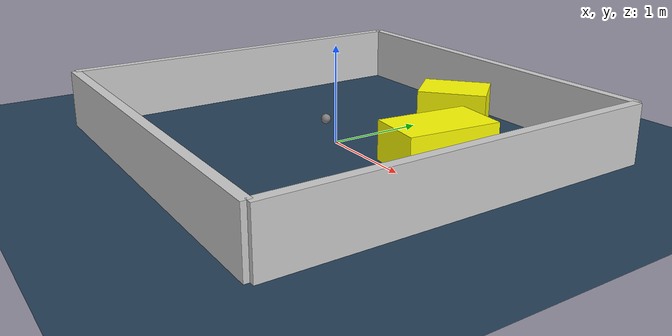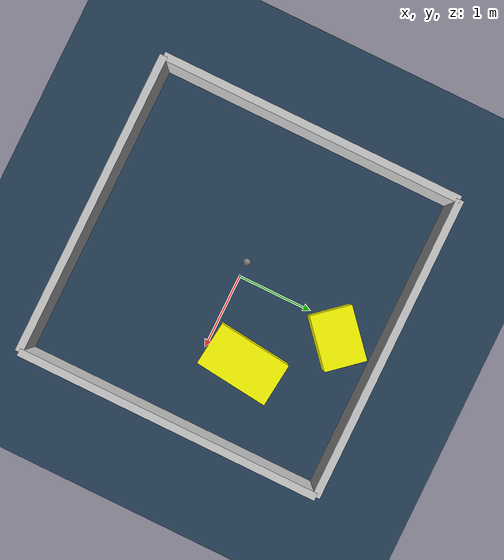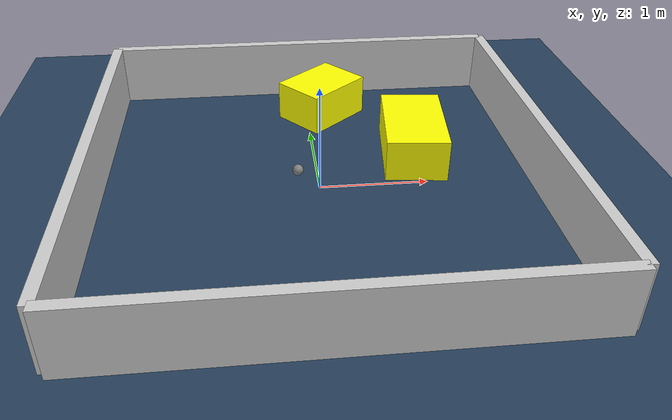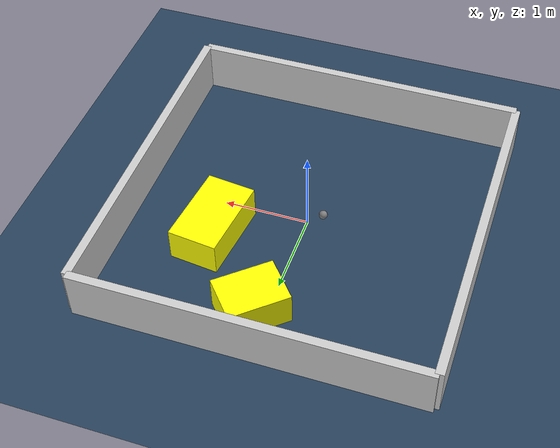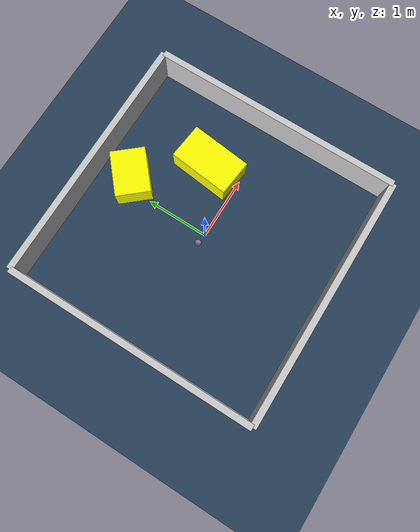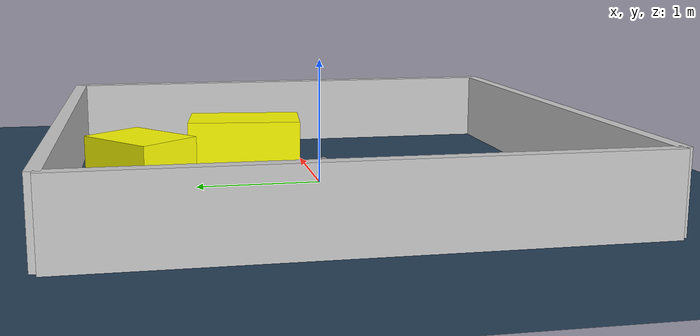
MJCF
<?xml version="1.0" ?>
<mujoco model="generated_environment">
  <option timestep="0.01" integrator="RK4" cone="elliptic"/>
  <default>
    <geom density="1"/>
  </default>
  <asset>
    <texture builtin="gradient" height="3072" rgb1="0.3 0.5 0.7" rgb2="0 0 0" type="skybox" width="512"/>
    <texture builtin="checker" height="300" mark="edge" markrgb="0.8 0.8 0.8" name="groundplane" rgb1="0.2 0.3 0.4" rgb2="0.1 0.2 0.3" type="2d" width="300"/>
    <material name="groundplane" reflectance="0.2" texrepeat="5 5" texture="groundplane" texuniform="true"/>
    <material name="robot" rgba="0.0 1.0 0.0 1"/>
  </asset>
  <worldbody>
    <light dir="0 0 -1" directional="true" pos="0 0 1.5"/>
    <geom condim="4" friction="1.0 0.005 0.001" material="groundplane" name="floor" size="0 0 0.05" type="plane"/>
    <body name="walls">
      <geom name="wall_1" condim="4" pos="-2.0 0.0 0.3" rgba="0.800000011920929 0.800000011920929 0.800000011920929 1.0" size="0.05 2.0 0.3" type="box"/>
      <geom name="wall_2" condim="4" pos="2.0 0.0 0.3" rgba="0.800000011920929 0.800000011920929 0.800000011920929 1.0" size="0.05 2.0 0.3" type="box"/>
      <geom name="wall_3" condim="4" pos="0.0 -2.0 0.3" rgba="0.800000011920929 0.800000011920929 0.800000011920929 1.0" size="2.0 0.05 0.3" type="box"/>
      <geom name="wall_4" condim="4" pos="0.0 2.0 0.3" rgba="0.800000011920929 0.800000011920929 0.800000011920929 1.0" size="2.0 0.05 0.3" type="box"/>
    </body>
    <body name="robot">
      <joint name="joint_x" type="slide" pos="0 0 0" axis="1 0 0"/>
      <joint name="joint_y" type="slide" pos="0 0 0" axis="0 1 0"/>
      <geom name="robot" type="sphere" pos="-0.1947829056664918 0.003927270700190499 0.2" size="0.05" mass="5." friction="1.0 0.005 0.0001" condim="4"/>
      <site name="sensor_ball"/>
    </body>
    <body name="obstacle_1_movable">
      <geom name="obstacle_1_movable" condim="4" pos="0.15806161743420732 1.4308407405117112 0.2" euler="0 0 40.9609612981173" friction="1.0 0.005 0.001" rgba="1 1 0 1" size="0.35919540010430157 0.2730051333446332 0.2" type="box" mass="0.1"/>
      <joint type="free"/>
    </body>
    <body name="obstacle_2_movable">
      <geom name="obstacle_2_movable" condim="4" pos="0.9608270553583045 0.5147459248762911 0.2" euler="0 0 263.6200648548685" friction="1.0 0.005 0.001" rgba="1 1 0 1" size="0.48821563523657135 0.2895664420653604 0.2" type="box" mass="0.1"/>
      <joint type="free"/>
    </body>
  </worldbody>
  <actuator>
    <motor name="actuator_x" joint="joint_x" gear="1" ctrlrange="-1 1"/>
    <motor name="actuator_y" joint="joint_y" gear="1" ctrlrange="-1 1"/>
  </actuator>
</mujoco>
